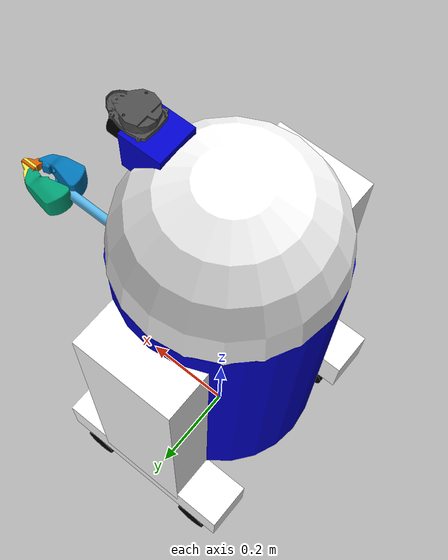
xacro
<?xml version="1.0"?>
<robot name="macroed" xmlns:xacro="http://ros.org/wiki/xacro">

  <xacro:property name="width" value="0.2" />
  <xacro:property name="leglen" value="0.6" />
  <xacro:property name="polelen" value="0.2" />
  <xacro:property name="bodylen" value="0.6" />
  <xacro:property name="baselen" value="0.4" />
  <xacro:property name="wheeldiam" value="0.07" />
  <xacro:property name="pi" value="3.1415" />
  <xacro:property name="lens_radius" value="0.025"/>
  <xacro:property name="lens_length" value="0.05"/>

  <material name="blue">
    <color rgba="0 0 0.8 1"/>
  </material>

  <material name="black">
    <color rgba="0 0 0 1"/>
  </material>

  <material name="white">
    <color rgba="1 1 1 1"/>
  </material>

    <material name="dark">
    <color rgba="0.3 0.3 0.3 1.0"/>
  </material>

  <xacro:macro name="default_inertial" params="mass">
    <inertial>
      <mass value="${mass}" />
      <inertia ixx="1.0" ixy="0.0" ixz="0.0" iyy="1.0" iyz="0.0" izz="1.0" />
    </inertial>
  </xacro:macro>

  <link name="base_link">
    <visual>
      <geometry>
        <cylinder radius="${width}" length="${bodylen}"/>
      </geometry>
      <material name="blue"/>
    </visual>
    <collision>
      <geometry>
        <cylinder radius="${width}" length="${bodylen}"/>
      </geometry>
    </collision>
    <xacro:default_inertial mass="10"/>
  </link>

  <xacro:macro name="wheel" params="prefix suffix reflect">

    <link name="${prefix}_${suffix}_wheel">
      <visual>
        <origin xyz="0 0 0" rpy="${pi/2} 0 0" />
        <geometry>
          <cylinder radius="${wheeldiam/2}" length="0.1"/>
        </geometry>
        <material name="black"/>
      </visual>
      <collision>
        <origin xyz="0 0 0" rpy="${pi/2} 0 0" />
        <geometry>
          <cylinder radius="${wheeldiam/2}" length="0.1"/>
        </geometry>
      </collision>
      <xacro:default_inertial mass="1"/>
    </link>
    <joint name="${prefix}_${suffix}_wheel_joint" type="continuous">
      <axis xyz="0 1 0" rpy="0 0 0" />
      <parent link="${prefix}_base"/>
      <child link="${prefix}_${suffix}_wheel"/>
      <origin xyz="${baselen*reflect/3} 0 -${wheeldiam/2+.05}" rpy="0 0 0"/>
    </joint>

  </xacro:macro>

  <xacro:macro name="leg" params="prefix reflect">
    <link name="${prefix}_leg">
      <visual>
        <geometry>
          <box size="${leglen} 0.1 0.2"/>
        </geometry>
        <origin xyz="0 0 -${leglen/2}" rpy="0 ${pi/2} 0"/>
        <material name="white"/>
      </visual>
      <collision>
        <geometry>
          <box size="${leglen} 0.1 0.2"/>
        </geometry>
        <origin xyz="0 0 -${leglen/2}" rpy="0 ${pi/2} 0"/>
      </collision>
      <xacro:default_inertial mass="10"/>
    </link>

    <joint name="base_to_${prefix}_leg" type="fixed">
      <parent link="base_link"/>
      <child link="${prefix}_leg"/>
      <origin xyz="0 ${reflect*(width+.02)} 0.25" />
    </joint>

    <link name="${prefix}_base">
      <visual>
        <geometry>
          <box size="${baselen} 0.1 0.1"/>
        </geometry>
        <material name="white"/>
      </visual>
      <collision>
        <geometry>
          <box size="${baselen} 0.1 0.1"/>
        </geometry>
      </collision>
      <xacro:default_inertial mass="10"/>
    </link>

    <joint name="${prefix}_base_joint" type="fixed">
      <parent link="${prefix}_leg"/>
      <child link="${prefix}_base"/>
      <origin xyz="0 0 ${-leglen}" />
    </joint>
    <xacro:wheel prefix="${prefix}" suffix="front" reflect="1"/>
    <xacro:wheel prefix="${prefix}" suffix="back" reflect="-1"/>
  </xacro:macro>
  <xacro:leg prefix="right" reflect="-1" />
  <xacro:leg prefix="left" reflect="1" />

  <joint name="gripper_extension" type="prismatic">
    <parent link="base_link"/>
    <child link="gripper_pole"/>
    <limit effort="1000.0" lower="-${width*2-.02}" upper="0" velocity="0.5"/>
    <origin rpy="0 0 0" xyz="${width-.01} 0 0.05"/>
  </joint>

  <link name="gripper_pole">
    <visual>
      <geometry>
        <cylinder length="${polelen}" radius="0.01"/>
      </geometry>
      <origin xyz="${polelen/2} 0 0" rpy="0 ${pi/2} 0 "/>
    </visual>
    <collision>
      <geometry>
        <cylinder length="${polelen}" radius="0.01"/>
      </geometry>
      <origin xyz="${polelen/2} 0 0" rpy="0 ${pi/2} 0 "/>
    </collision>
    <xacro:default_inertial mass="0.05"/>
  </link>

  <xacro:macro name="gripper" params="prefix reflect">
    <joint name="${prefix}_gripper_joint" type="revolute">
      <axis xyz="0 0 ${reflect}"/>
      <limit effort="1000.0" lower="0.0" upper="0.548" velocity="0.5"/>
      <origin rpy="0 0 0" xyz="${polelen} ${reflect*0.01} 0"/>
      <parent link="gripper_pole"/>
      <child link="${prefix}_gripper"/>
    </joint>
    <link name="${prefix}_gripper">
      <visual>
        <origin rpy="${(reflect-1)/2*pi} 0 0" xyz="0 0 0"/>
        <geometry>
          <mesh filename="package://urdf_tutorial/meshes/l_finger.dae"/>
        </geometry>
      </visual>
      <collision>
        <geometry>
          <mesh filename="package://urdf_tutorial/meshes/l_finger.dae"/>
        </geometry>
        <origin rpy="${(reflect-1)/2*pi} 0 0" xyz="0 0 0"/>
      </collision>
      <xacro:default_inertial mass="0.05"/>
    </link>

    <joint name="${prefix}_tip_joint" type="fixed">
      <parent link="${prefix}_gripper"/>
      <child link="${prefix}_tip"/>
    </joint>
    <link name="${prefix}_tip">
      <visual>
        <origin rpy="${(reflect-1)/2*pi} 0 0" xyz="0.09137 0.00495 0"/>
        <geometry>
          <mesh filename="package://urdf_tutorial/meshes/l_finger_tip.dae"/>
        </geometry>
      </visual>
      <collision>
        <geometry>
          <mesh filename="package://urdf_tutorial/meshes/l_finger_tip.dae"/>
        </geometry>
        <origin rpy="${(reflect-1)/2*pi} 0 0" xyz="0.09137 0.00495 0"/>
      </collision>
      <xacro:default_inertial mass="0.05"/>
    </link>
  </xacro:macro>

  <xacro:gripper prefix="left" reflect="1" />
  <xacro:gripper prefix="right" reflect="-1" />

  <link name="head">
    <visual>
      <geometry>
        <sphere radius="${width}"/>
      </geometry>
      <material name="white"/>
    </visual>
    <collision>
      <geometry>
        <sphere radius="${width}"/>
      </geometry>
    </collision>
    <xacro:default_inertial mass="2"/>
  </link>

  <joint name="head_swivel" type="fixed">
    <parent link="base_link"/>
    <child link="head"/>
    <axis xyz="0 0 1"/>
    <origin xyz="0 0 ${bodylen/2}"/>
  </joint>

  <link name="box">
    <visual>
      <geometry>
        <box size="0.08 0.08 0.08"/>
      </geometry>
      <material name="blue"/>
      <origin xyz="-0.04 0 0"/>
    </visual>
    <collision>
      <geometry>
        <box size="0.08 0.08 0.08"/>
      </geometry>
    </collision>
    <xacro:default_inertial mass="1"/>
  </link>

  <joint name="tobox" type="fixed">
    <parent link="head"/>
    <child link="box"/>
    <origin xyz="${.707*width+0.04} 0 ${.707*width}"/>
  </joint>

  <link name="lens">
   <visual>
     <geometry>
       <cylinder radius="${lens_radius}" length="${lens_length}"/>
     </geometry>
     <material name="black"/>
   </visual>
     <collision>
       <geometry>
        <cylinder radius="${lens_radius}" length="${lens_length}"/>
       </geometry>
     </collision>
     <xacro:default_inertial mass="0.5"/>
  </link>

  <joint name="lens_extension" type="prismatic">
    <axis xyz="0 0 1" rpy="0 0 0"/>
    <parent link="box"/>
    <child link="lens"/>
    <limit effort="1000.0" lower="-0.05" upper="0" velocity="0.5"/>
    <origin xyz="0.015 0 0" rpy="0 ${pi/2} 0"/>
  </joint>

  <link name="base_footprint">
  </link>

  <joint name="base_footprint" type="fixed">
    <parent link="base_footprint"/>
    <child link="base_link"/>
    <origin xyz="0 0 0.47" rpy="0 0 0"/>
  </joint>

  <joint name="scan_joint" type="fixed">
    <parent link="box"/>
    <child link="base_scan"/>
    <origin xyz="0 0 0.04" rpy="0 0 0"/>
  </joint>

  <link name="base_scan">
    <visual>
      <origin xyz="-0.01 0 0.02" rpy="0 0 0"/>
      <geometry>
        <mesh filename="package://turtlebot3_description/meshes/sensors/lds.stl" scale="0.001 0.001 0.001"/>
      </geometry>
      <material name="dark"/>
    </visual>

    <collision>
      <origin xyz="-0.01 0 0.2" rpy="0 0 0"/>
      <geometry>
        <cylinder length="0.0315" radius="0.055"/>
      </geometry>
    </collision>

    <inertial>
      <mass value="0.114" />
      <origin xyz="-0.01 0 0.2" />
      <inertia ixx="0.001" ixy="0.0" ixz="0.0"
               iyy="0.001" iyz="0.0"
               izz="0.001" />
    </inertial>
  </link>

  <gazebo reference="base_scan">
    <material>Gazebo/FlatBlack</material>
     <sensor type="ray" name="lds_lfcd_sensor">
      <pose>0 0 0 0 0 0</pose>
       <visualize>false</visualize>
        <update_rate>5</update_rate>
         <ray>
          <scan>
           <horizontal>
            <samples>360</samples>
            <resolution>1</resolution>
            <min_angle>0.0</min_angle>
            <max_angle>6.28319</max_angle>
           </horizontal>
          </scan>
          <range>
           <min>0.120</min>
           <max>3.5</max>
           <resolution>0.015</resolution>
          </range>
          <noise>
           <type>gaussian</type>
           <mean>0.0</mean>
           <stddev>0.01</stddev>
          </noise>
         </ray>
         <plugin name="gazebo_ros_lds_lfcd_controller" filename="libgazebo_ros_laser.so">
          <topicName>scan</topicName>
          <frameName>base_scan</frameName>
         </plugin>
      </sensor>
  </gazebo>

  <gazebo>
  <!-- Gazebo plugin for skid steering -->
  <plugin name="skid_steer_drive_controller" filename="libgazebo_ros_skid_steer_drive.so">
    <alwaysOn>true</alwaysOn>
    <updateRate>50.0</updateRate>
    <leftFrontJoint>left_front_wheel_joint</leftFrontJoint>
    <rightFrontJoint>right_front_wheel_joint</rightFrontJoint>
    <leftRearJoint>left_back_wheel_joint</leftRearJoint>
    <rightRearJoint>right_back_wheel_joint</rightRearJoint>
    <wheelSeparation>${2.0*baselen/3.0}</wheelSeparation>
    <wheelDiameter>${wheeldiam}</wheelDiameter>
    <torque>10</torque>
    <broadcastTF>1</broadcastTF>
    <odometryFrame>odom</odometryFrame>
    <commandTopic>cmd_vel</commandTopic>
    <odometryTopic>/odom</odometryTopic>
    <robotBaseFrame>base_link</robotBaseFrame>
  </plugin>
  </gazebo>

</robot>
